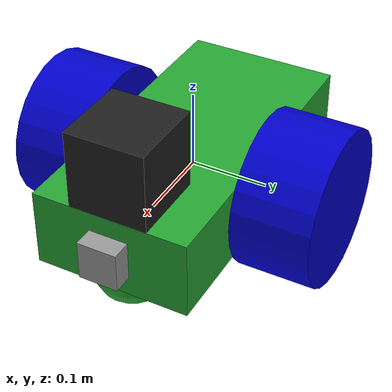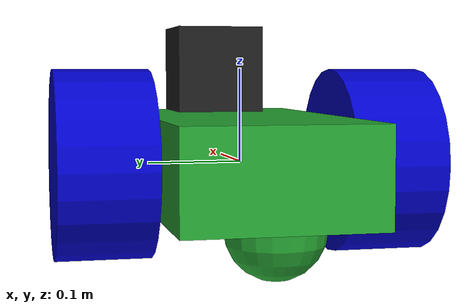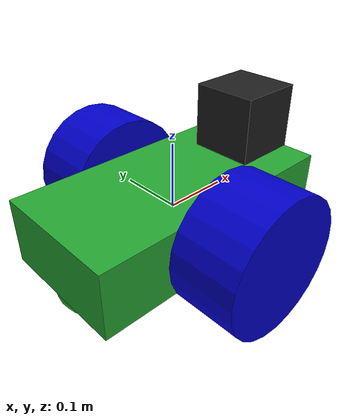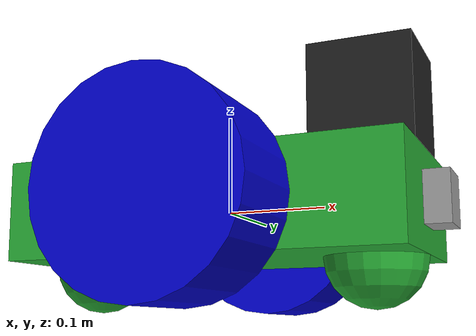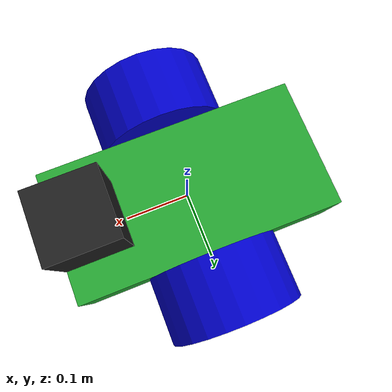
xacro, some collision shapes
<?xml version='1.0'?>

<robot name="my_robot" xmlns:xacro="http://www.ros.org/wiki/xacro">

  <link name="robot_footprint"></link>

    <material name="blue">
     <color rgba="0 0 0.8 1"/>
    </material>
    <material name="black">
     <color rgba="0 0 0 1"/>
    </material>

  <xacro:include filename="$(find my_robot)/urdf/my_robot.gazebo" />

  <!-- joint =  chassis to parent robot_footprint -->
  <joint name="robot_footprint_joint" type="fixed">
    <origin xyz="0 0 0" rpy="0 0 0" />
    <parent link="robot_footprint"/>
    <child link="chassis" />
  </joint>

   <!-- link = chassis -->

  <link name='chassis'>
    <pose>0 0 0.1 0 0 0</pose>

    <inertial>
      <mass value="15.0"/>
      <origin xyz="0.0 0 0" rpy=" 0 0 0"/>
      <inertia
          ixx="0.1" ixy="0" ixz="0"
          iyy="0.1" iyz="0"
          izz="0.1"
      />
    </inertial>

    <collision name='collision'>
      <origin xyz="0 0 0" rpy=" 0 0 0"/>
      <geometry>
        <box size=".4 .2 .1"/>
      </geometry>
    </collision>

    <visual name='chassis_visual'>
      <origin xyz="0 0 0" rpy=" 0 0 0"/>
      <geometry>
        <box size=".4 .2 .1"/>
      </geometry>
    </visual>

    <collision name='back_caster_collision'>
      <origin xyz="-0.15 0 -0.05" rpy=" 0 0 0"/>
      <geometry>
        <sphere radius="0.0499"/>
      </geometry>
    </collision>

    <visual name='back_caster_visual'>
      <origin xyz="-0.15 0 -0.05" rpy=" 0 0 0"/>
      <geometry>
        <sphere radius="0.05"/>
      </geometry>
    </visual>

    <collision name='front_caster_collision'>
      <origin xyz="0.15 0 -0.05" rpy=" 0 0 0"/>
      <geometry>
        <sphere radius="0.0499"/>
      </geometry>
    </collision>

    <visual name='front_caster_visual'>
      <origin xyz="0.15 0 -0.05" rpy=" 0 0 0"/>
      <geometry>
        <sphere radius="0.05"/>
      </geometry>
    </visual>

  </link>

  <!--  link =  left_wheel -->
  <link name='left_wheel'>
    <pose>0 0 0 0 0 0</pose>

    <inertial>
      <mass value="5.0"/>
      <origin xyz="0.0 0 0" rpy=" 0 1.5707 1.5707"/>
      <inertia
          ixx="0.1" ixy="0" ixz="0"
          iyy="0.1" iyz="0"
          izz="0.1"
      />
    </inertial>

    <collision name='collision'>
      <origin xyz="0 0 0" rpy=" 0 1.5707 1.5707"/>
      <geometry>
        <cylinder radius="0.1" length="0.1"/>
      </geometry>
    </collision>

    <visual name='left_wheel_visual'>
      <origin xyz="0 0 0" rpy=" 0 1.5707 1.5707"/>
      <geometry>
        <cylinder radius="0.1" length="0.1"/>
      </geometry>

       <material name="blue"/>
    </visual>

  </link>

  <!-- link =  right_wheel  -->
  <link name='right_wheel'>
    <pose>0 0 0 0 0 0</pose>

    <inertial>
      <mass value="5.0"/>
      <origin xyz="0.0 0 0" rpy=" 0 1.5707 1.5707"/>
      <inertia
          ixx="0.1" ixy="0" ixz="0"
          iyy="0.1" iyz="0"
          izz="0.1"
      />
    </inertial>

    <collision name='collision'>
      <origin xyz="0 0 0" rpy=" 0 1.5707 1.5707"/>
      <geometry>
        <cylinder radius="0.1" length="0.1"/>
      </geometry>
    </collision>

    <visual name='right_wheel_visual'>
      <origin xyz="0 0 0" rpy=" 0 1.5707 1.5707"/>
      <geometry>
        <cylinder radius="0.1" length="0.1"/>
      </geometry>

     <material name="blue"/>
    </visual>

  </link>

  <!-- joint =  left_wheel_hinge -->
  <joint type="continuous" name="left_wheel_hinge">
    <origin xyz="0 0.15 0" rpy="0 0 0"/>
    <child link="left_wheel"/>
    <parent link="chassis"/>
    <axis xyz="0 1 0" rpy="0 0 0"/>
    <limit effort="10000" velocity="1000"/>
    <dynamics damping="1.0" friction="1.0"/>
  </joint>

  <!-- joint =  right_wheel_hinge -->
  <joint type="continuous" name="right_wheel_hinge">
    <origin xyz="0 -0.15 0" rpy="0 0 0"/>
    <child link="right_wheel"/>
    <parent link="chassis"/>
    <axis xyz="0 1 0" rpy="0 0 0"/>
    <limit effort="10000" velocity="1000"/>
    <dynamics damping="1.0" friction="1.0"/>
  </joint>

  <!-- link =  camera  -->
   <link name='camera'>
    <pose>0 0 0 0 0 0</pose>

    <inertial>
      <mass value="0.1"/>
      <origin xyz="0.0 0 0" rpy="0.0 0 0"/>
      <inertia
          ixx="1e-6" ixy="0" ixz="0"
          iyy="1e-6" iyz="0"
          izz="1e-6"
      />
    </inertial>

    <collision name='collision'>
      <origin xyz="0 0 0" rpy=" 0 0 0"/>
      <geometry>
        <box size="0.05 0.05 0.05"/>
      </geometry>
    </collision>

    <visual name='camera_visual'>
      <origin xyz="0 0 0" rpy="0 0 0"/>
      <geometry>
        <box size="0.05 0.05 0.05"/>
      </geometry>
    </visual>
  </link>

  <!-- joint =  camera  -->
  <joint type="fixed" name="camera_joint">
    <origin xyz="0.2 0 0" rpy="0 0 0"/>
    <child link="camera"/>
    <parent link="chassis"/>
    <axis xyz="0 1 0" rpy="0 0 0"/>
    <limit effort="10000" velocity="1000"/>
    <dynamics damping="1.0" friction="1.0"/>
  </joint>

  <!-- link =  hokuyo lidar  -->
  <link name='hokuyo'>
    <pose>0 0 0 0 0 0</pose>

    <inertial>
      <mass value="1e-5"/>
      <origin xyz="0.0 0 0" rpy="0.0 0 0"/>
      <inertia
          ixx="1e-6" ixy="0" ixz="0"
          iyy="1e-6" iyz="0"
          izz="1e-6"
      />
    </inertial>

    <collision name='collision'>
      <origin xyz="0 0 0" rpy=" 0 0 0"/>
      <geometry>
        <box size="0.1 0.1 0.1"/>
      </geometry>
    </collision>

    <visual name='hokuyo_visual'>
      <origin xyz="0 0 0" rpy="0 0 0"/>
      <geometry>
        <mesh filename="package://my_robot/meshes/hokuyo.dae"/>
      </geometry>
    </visual>
  </link>

  <!-- joint =  hokuyo_joint lidar  -->
  <joint type="fixed" name="hokuyo_joint">
    <origin xyz="0.15 0.0 0.1" rpy="0 0 0"/>
    <child link="hokuyo"/>
    <parent link="chassis"/>
    <axis xyz="0 1 0" rpy="0 0 0"/>
    <limit effort="10000" velocity="1000"/>
    <dynamics damping="1.0" friction="1.0"/>
  </joint>

 <!-- link =  camera_optical_joint  -->
  <joint name="camera_optical_joint" type="fixed">
    <origin xyz="0 0 0" rpy="-1.5707 0 -1.5707"/>
    <parent link="camera"/>
    <child link="camera_link_optical"/>
  </joint>

 <!-- link =  camera_link_optical  -->
  <link name="camera_link_optical">
  </link>

  <!-- colors  -->

    <gazebo reference="left_wheel">
        <material>Gazebo/Blue</material>
    </gazebo>

    <gazebo reference="right_wheel">
        <material>Gazebo/Blue</material>
    </gazebo>

    <gazebo reference="chassis">
        <material>Gazebo/Green</material>
    </gazebo>

    <gazebo reference="hokuyo">
        <material>Gazebo/Black</material>
    </gazebo>

    <gazebo reference="camera">
        <material>Gazebo/Gray</material>
    </gazebo>

</robot>
